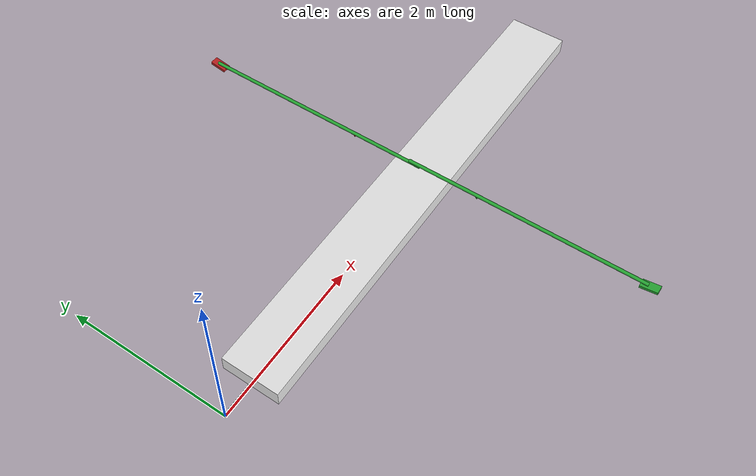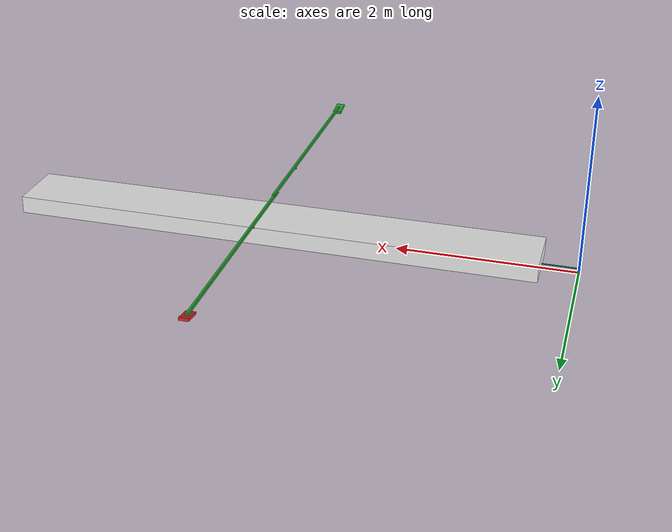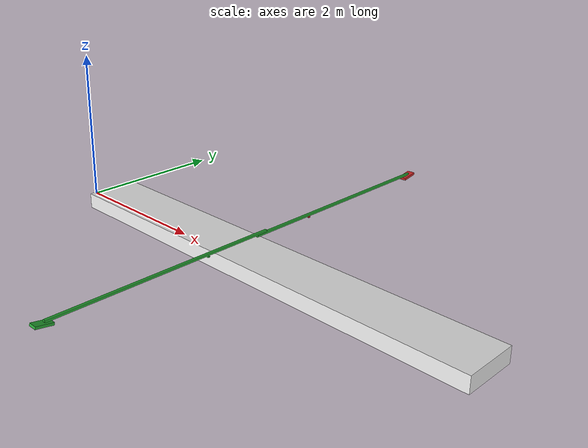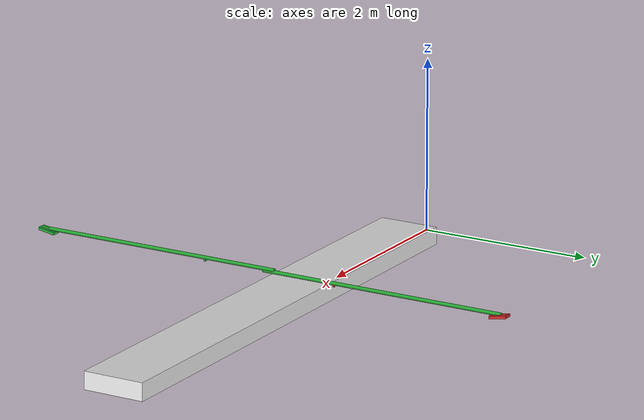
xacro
<?xml version="1.0" ?>

<robot name="myboat"  xmlns:xacro="http://www.ros.org/wiki/xacro">

  <!-- Constants for robot dimensions -->

  <!-- Import all Gazebo-customization elements, including Gazebo colors -->
  <xacro:include filename="$(find boot2_description)/urdf/boot2.gazebo" />
  <!-- Import Rviz colors -->
  <xacro:include filename="$(find boot2_description)/urdf/materials.xacro" />

  <!-- parameters that can be configured -->
  <xacro:include filename="$(find boot2_description)/config/param.xacro" />

  <joint name="prism" type="prismatic">
    <parent link="world"/>
    <child link="l1"/>
    <origin xyz="0 0 0.25" rpy="0 0 0"/>
    <axis xyz="1 0 0"/>
    <limit effort="1000.0" lower="-1000" upper="1000" velocity="0.5"/>
  </joint>

  <joint name="rev1" type="revolute">
    <parent link="l1"/>
    <child link="l2"/>
    <origin xyz="0.0 0 -0.2" rpy="0 ${pi/2} 0"/>
    <axis xyz="0 1 0"/>
    <limit effort="1000.0" lower="-1" upper="1" velocity="1.0"/>
  </joint>

  <joint name="rev2" type="revolute">
    <parent link="l2"/>
    <child link="skiff"/>
    <origin xyz="0.0 0.0 0.4" rpy="${pi} ${pi/2} 0"/>
    <axis xyz="0 1 0"/>
    <limit effort="1000.0" lower="-1" upper="1" velocity="1.0"/>
  </joint>

  <joint name="starboard_rowlock" type="revolute">
    <parent link="skiff"/>
    <child link="starboard_rowlock_l"/>
    <origin rpy="0.0  0.0 0.0" xyz="-3 ${span/2} 0.42"/>
    <axis xyz="0 0 1"/>
    <limit effort="1000.0" lower="-1.4" upper="1.4" velocity="1.0"/>
  </joint>

  <joint name="port_rowlock" type="revolute">
    <parent link="skiff"/>
    <child link="port_rowlock_l"/>
    <origin rpy="0.0  0.0 0.0" xyz="-3 -${span/2} 0.4"/>
    <axis xyz="0 0 1"/>
    <limit effort="1000.0" lower="-1.4" upper="1.4" velocity="1.0"/>
  </joint>

  <joint name="starboard_oar" type="revolute">
    <parent link="starboard_rowlock_l"/>
    <child link="starboard_oar_l"/>
    <origin rpy="0.0  ${pi/2} -${pi/2}" xyz="0.0 0.0   0.02"/>
    <axis xyz="0 1 0"/>
    <limit effort="1000.0" lower="-0.4" upper="0.0" velocity="1.0"/>
  </joint>

  <joint name="port_oar" type="revolute">
    <parent link="port_rowlock_l"/>
    <child link="port_oar_l"/>
    <origin rpy="0.0  ${pi/2} -${pi/2}" xyz="0.0 0.0   0.02"/>
    <axis xyz="0 1 0"/>
    <limit effort="1000.0" lower="0.0" upper="0.4" velocity="1.0"/>
  </joint>

  <joint name="starboard_blade" type="revolute">
    <parent link="starboard_oar_l"/>
    <child link="starboard_blade_l"/>
    <origin rpy="0 0  0.0" xyz="0.0 0.0   -${outer}"/>
    <axis xyz="0 1 0"/>
    <limit effort="1000.0" lower="-0.4" upper="0.4" velocity="1.0"/>
  </joint>

  <joint name="port_blade" type="revolute">
    <parent link="port_oar_l"/>
    <child link="port_blade_l"/>
    <origin rpy="0.0  0 0.0" xyz="0.0 0.0   ${outer}"/>
    <axis xyz="0 1 0"/>
    <limit effort="1000.0" lower="-0.4" upper="0.4" velocity="1.0"/>
  </joint>

  <link name="world"/>

  <link name="l1">
    <inertial>
      <mass value="0.01"/>
      <origin rpy="0 0 0" xyz="0 0.0 -0.1"/>
      <inertia ixx="0.006" ixy="0" ixz="0" iyy="0.1" iyz="0" izz="0.1"/>
    </inertial>
    <visual>
      <origin rpy="0 0 0" xyz="0.0 0.0 -0.1"/>
      <geometry>
        <box size="0.01 0.01 0.20"/>
      </geometry>
    </visual>
  </link>

  <link name="l2">
    <inertial>
      <mass value="0.01"/>
      <origin rpy="0 0 0" xyz="0 0.0 0.2"/>
      <inertia ixx="0.006" ixy="0" ixz="0" iyy="0.1" iyz="0" izz="0.1"/>
    </inertial>
    <visual>
      <origin rpy="0 0 0" xyz="0.0 0.0 0.2"/>
      <geometry>
        <box size="0.01 0.01 0.40"/>
      </geometry>
    </visual>
  </link>

  <link name="skiff">
    <inertial>
      <mass value="${15 + weight}"/>   <!-- boat plus roeier -->
      <origin rpy="0 0 0" xyz="-3 0.0 0.05"/>
      <inertia ixx="3.2" ixy="0" ixz="0" iyy="54.2" iyz="0" izz="57"/>
    </inertial>
    <collision>
      <origin rpy="0 0 0" xyz="-3 0.0   0.05"/>
      <geometry>
        <box size="6.0 0.7 0.2"/>
      </geometry>
    </collision>
    <visual>
      <!-- should be a nice skull shape including riggers-->
      <origin rpy="0 0 0" xyz="-3 0.0   0.05"/>
      <geometry>
        <box size="6.0 0.7 0.2"/>
      </geometry>
    </visual>
  </link>

  <link name="starboard_rowlock_l">
    <inertial>
      <mass value="0.1"/>
      <origin rpy="0 0 0" xyz="0.0 0.0 0.0"/>
      <inertia ixx="0.000017" ixy="0" ixz="0" iyy="0.000017" iyz="0" izz="0.000007"/>
    </inertial>
    <collision>
      <origin rpy="0 0 0" xyz="0.0 0.0   0.0"/>
      <geometry>
        <box size="0.02 0.02 0.04"/>
      </geometry>
    </collision>
    <visual>
      <origin rpy="0 0 0" xyz="0.0 0.0   0.0"/>
      <geometry>
        <box size="0.02 0.02 0.04"/>
      </geometry>
    </visual>
  </link>

  <link name="port_rowlock_l">
    <inertial>
      <mass value="0.1"/>
      <origin rpy="0 0 0" xyz="0.0 0.0 0.0"/>
      <inertia ixx="0.000017" ixy="0" ixz="0" iyy="0.000017" iyz="0" izz="0.000007"/>
    </inertial>
    <collision>
      <origin rpy="0 0 0" xyz="0.0 0.0   0.0"/>
      <geometry>
        <box size="0.02 0.02 0.04"/>
      </geometry>
    </collision>
    <visual>
      <origin rpy="0 0 0" xyz="0.0 0.0   0.0"/>
      <geometry>
        <box size="0.02 0.02 0.04"/>
      </geometry>
    </visual>
  </link>

  <link name="starboard_oar_l">
    <inertial>
      <mass value="1.0"/>
      <origin rpy="0 0 0" xyz="0 0 -${(outer-inner)/2}"/>
      <inertia ixx="0.6" ixy="0" ixz="0" iyy="0.6" iyz="0" izz="0.001"/>
    </inertial>
    <collision>
      <origin rpy="0 0 0" xyz="0   0   -${(outer-inner)/2}"/>
      <geometry>
        <cylinder length="${inner+outer -0.6}" radius="0.02"/>
      </geometry>
    </collision>
    <visual>
      <origin rpy="0 0 0" xyz="0   0.0   -${(outer-inner)/2}"/>
      <geometry>
        <cylinder length="${inner+outer}" radius="0.02"/>
      </geometry>
    </visual>
  </link>

  <link name="port_oar_l">
    <inertial>
      <mass value="1.0"/>
      <origin rpy="0 0 0" xyz="0 0 ${(outer-inner)/2}"/>
      <inertia ixx="0.6" ixy="0" ixz="0" iyy="0.6" iyz="0" izz="0.001"/>
    </inertial>
    <collision>
      <origin rpy="0 0 0" xyz="0   0   ${(outer-inner)/2}"/>
      <geometry>
        <cylinder length="${inner+outer-0.6}" radius="0.02"/>  <!-- -0.6 to prevent collissions  -->
      </geometry>
    </collision>
    <visual>
      <origin rpy="0 0 0" xyz="0   0   ${(outer-inner)/2}"/>
      <geometry>
        <cylinder length="${inner+outer}" radius="0.02"/>
      </geometry>
    </visual>
  </link>

  <link name="starboard_blade_l">
    <inertial>
      <mass value="1.0"/>
      <origin rpy="0 -1.4 0" xyz="0.02 0 -0.02"/>
      <inertia ixx="0.0009" ixy="0" ixz="0" iyy="0.0034" iyz="0" izz="0.004"/>
    </inertial>
    <collision>
      <origin rpy="0 -1.4 0" xyz="0.02    0   -0.02"/>
      <geometry>
        <box size="0.2 0.1 0.03"/>
      </geometry>
    </collision>
    <visual>
      <origin rpy="0 -1.4 0" xyz="0.02    0   -0.02"/>
      <geometry>
        <box size="0.2 0.1 0.03"/>
      </geometry>
    </visual>
  </link>

  <link name="port_blade_l">
    <inertial>
      <mass value="1.0"/>
      <origin rpy="0 1.4 0" xyz="0.02 0 -0.02"/>
      <inertia ixx="0.0009" ixy="0" ixz="0" iyy="0.0034" iyz="0" izz="0.004"/>
    </inertial>
    <collision>
      <origin rpy="0 1.4 0" xyz="0.02    0   -0.02"/>
      <geometry>
        <box size="0.2 0.1 0.03"/>
      </geometry>
    </collision>
    <visual>
      <origin rpy="0 1.4 0" xyz="0.02    0.0  -0.02"/>
      <geometry>
        <box size="0.2 0.1 0.03"/>
      </geometry>
    </visual>
  </link>

  <transmission name="tran1">
    <type>transmission_interface/SimpleTransmission</type>
    <joint name="starboard_rowlock">
      <hardwareInterface>hardware_interface/EffortJointInterface</hardwareInterface>
    </joint>
    <actuator name="motor1">
      <mechanicalReduction>1</mechanicalReduction>
    </actuator>
  </transmission>

  <transmission name="tran2">
    <type>transmission_interface/SimpleTransmission</type>
    <joint name="port_rowlock">
      <hardwareInterface>hardware_interface/EffortJointInterface</hardwareInterface>
    </joint>
    <actuator name="motor2">
      <mechanicalReduction>1</mechanicalReduction>
    </actuator>
  </transmission>

  <transmission name="tran3">
    <type>transmission_interface/SimpleTransmission</type>
    <joint name="starboard_oar">
      <hardwareInterface>hardware_interface/EffortJointInterface</hardwareInterface>
    </joint>
    <actuator name="motor3">
      <mechanicalReduction>1</mechanicalReduction>
    </actuator>
  </transmission>

  <transmission name="tran4">
    <type>transmission_interface/SimpleTransmission</type>
    <joint name="port_oar">
      <hardwareInterface>hardware_interface/EffortJointInterface</hardwareInterface>
    </joint>
    <actuator name="motor4">
      <mechanicalReduction>1</mechanicalReduction>
    </actuator>
  </transmission>

  <transmission name="tran5">
    <type>transmission_interface/SimpleTransmission</type>
    <joint name="starboard_blade">
      <hardwareInterface>hardware_interface/EffortJointInterface</hardwareInterface>
    </joint>
    <actuator name="motor5">
      <mechanicalReduction>1</mechanicalReduction>
    </actuator>
  </transmission>

  <transmission name="tran6">
    <type>transmission_interface/SimpleTransmission</type>
    <joint name="port_blade">
      <hardwareInterface>hardware_interface/EffortJointInterface</hardwareInterface>
    </joint>
    <actuator name="motor6">
      <mechanicalReduction>1</mechanicalReduction>
    </actuator>
  </transmission>

</robot>

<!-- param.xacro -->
<robot 	xmlns:xacro="http://www.ros.org/wiki/xacro">

<!--
    Describes parameters of the boot model
-->

<!-- boat  -->
<xacro:property name="span" value="1.6" />

<!-- oar -->
<xacro:property name="inner" value="0.87" />
<xacro:property name="outer" value="2.00" />

<!--  rower -->
<xacro:property name="weight" value="70" />
<xacro:property name="lenght" value="1.80" />
<!--
 lengths of links, musle power?
-->

</robot>
